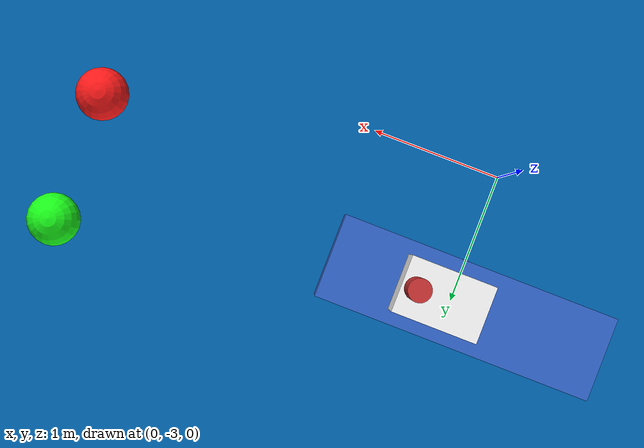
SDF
<?xml version="1.0" ?>
<sdf version="1.8">
  <world name="asv1_world">
    <physics name="1ms" type="ode">
      <max_step_size>0.005</max_step_size>
      <real_time_factor>1.0</real_time_factor>
    </physics>

    <plugin filename="gz-sim-sensors-system" name="gz::sim::systems::Sensors">
      <render_engine>ogre2</render_engine>
    </plugin>
    <plugin filename="gz-sim-scene-broadcaster-system" name="gz::sim::systems::SceneBroadcaster"/>

    <light type="directional" name="sun">
      <cast_shadows>true</cast_shadows>
      <pose>0 0 10 0 0 0</pose>
      <diffuse>0.8 0.8 0.8 1</diffuse>
      <specular>0.2 0.2 0.2 1</specular>
    </light>

    <model name="ground_plane">
      <static>true</static>
      <link name="link">
        <collision name="collision">
          <geometry><plane><normal>0 0 1</normal></plane></geometry>
          <surface>
            <friction>
              <ode>
                <mu>1.0</mu>
                <mu2>1.0</mu2>
              </ode>
            </friction>
            <contact>
              <ode>
                <kp>1e8</kp>
                <kd>100</kd>
              </ode>
            </contact>
          </surface>
        </collision>
        <visual name="water_visual">
          <pose>0 0 0 0 0 0</pose>
          <geometry><plane><normal>0 0 1</normal><size>100 100</size></plane></geometry>
          <material>
            <ambient>0.0 0.3 0.6 0.6</ambient>
            <diffuse>0.0 0.4 0.7 0.5</diffuse>
            <specular>0.1 0.1 0.1 1.0</specular>
          </material>
        </visual>
      </link>
    </model>

    <model name="kapal">
      <static>false</static>
      <pose>0 -2 0.45 0 0 0</pose>

      <link name="base_link">
        <inertial>
          <mass>5.0</mass>
          <inertia>
            <ixx>1.0</ixx><iyy>2.0</iyy><izz>1.5</izz>
            <ixy>0.0</ixy><ixz>0.0</ixz><iyz>0.0</iyz>
          </inertia>
        </inertial>

        <collision name="hull">
          <pose>0 0 0.2 0 0 0</pose>
          <geometry><box><size>2.0 0.6 0.4</size></box></geometry>
        </collision>

        <visual name="hull_visual">
          <pose>0 0 0.2 0 0 0</pose>
          <geometry><box><size>2.0 0.6 0.4</size></box></geometry>
          <material>
            <ambient>0.2 0.4 0.8 1.0</ambient>
            <diffuse>0.2 0.4 0.8 1.0</diffuse>
          </material>
        </visual>
        <visual name="cabin_visual">
          <pose>0.2 0 0.5 0 0 0</pose>
          <geometry><box><size>0.6 0.4 0.4</size></box></geometry>
          <material>
            <ambient>1.0 1.0 1.0 1.0</ambient>
            <diffuse>1.0 1.0 1.0 1.0</diffuse>
          </material>
        </visual>
        <visual name="funnel_visual">
          <pose>0.4 0 0.8 0 0 0</pose>
          <geometry><cylinder><radius>0.08</radius><length>0.3</length></cylinder></geometry>
          <material>
            <ambient>0.8 0.2 0.2 1.0</ambient>
            <diffuse>0.8 0.2 0.2 1.0</diffuse>
          </material>
        </visual>

        <sensor name="camera" type="camera">
          <pose>0.5 0 0.4 0 0 0</pose>
          <topic>/camera/image_raw</topic>
          <update_rate>10</update_rate>
          <camera>
            <horizontal_fov>1.047</horizontal_fov>
            <image>
              <width>640</width>
              <height>480</height>
              <format>R8G8B8</format>
            </image>
            <clip>
              <near>0.1</near>
              <far>30</far>
            </clip>
          </camera>
          <always_on>1</always_on>
          <visualize>true</visualize>
        </sensor>

        <sensor name="lidar" type="gpu_lidar">
          <pose>0 0 0.3 0 0 0</pose>
          <topic>/scan</topic>
          <update_rate>5</update_rate>
          <ray>
            <scan>
              <horizontal>
                <samples>360</samples>
                <resolution>1</resolution>
                <min_angle>-3.14159</min_angle>
                <max_angle>3.14159</max_angle>
              </horizontal>
            </scan>
            <range>
              <min>0.15</min>
              <max>12.0</max>
            </range>
          </ray>
          <always_on>1</always_on>
          <visualize>true</visualize>
        </sensor>
      </link>

      <plugin filename="/home/aji/robot_ws/src/asv1/src/plugins/libvelocity_controller.so" name="asv1::VelocityController"/>

      <plugin filename="gz-sim-pose-publisher-system" name="gz::sim::systems::PosePublisher">
        <publish_model_pose>true</publish_model_pose>
        <publish_model_twist>true</publish_model_twist>
        <use_odometry>true</use_odometry>
        <update_frequency>20</update_frequency>
      </plugin>
    </model>

    <model name="bola_merah">
      <static>true</static>
      <pose>3 -2.5 0.2 0 0 0</pose>
      <link name="link">
        <visual name="v"><geometry><sphere><radius>0.2</radius></sphere></geometry>
          <material><diffuse>1.0 0.1 0.1 1.0</diffuse><ambient>0.5 0.05 0.05 1.0</ambient></material>
        </visual>
        <collision name="c"><geometry><sphere><radius>0.2</radius></sphere></geometry></collision>
      </link>
    </model>
    <model name="bola_hijau">
      <static>true</static>
      <pose>3 -1.5 0.2 0 0 0</pose>
      <link name="link">
        <visual name="v"><geometry><sphere><radius>0.2</radius></sphere></geometry>
          <material><diffuse>0.1 1.0 0.1 1.0</diffuse><ambient>0.05 0.5 0.05 1.0</ambient></material>
        </visual>
        <collision name="c"><geometry><sphere><radius>0.2</radius></sphere></geometry></collision>
      </link>
    </model>
  </world>
</sdf>
